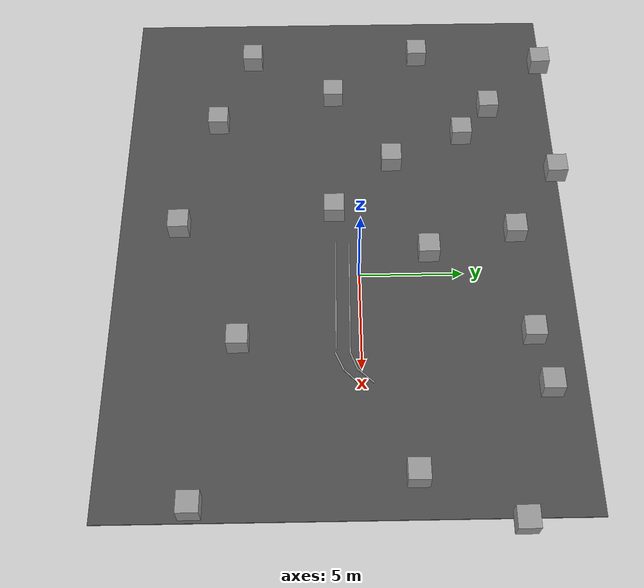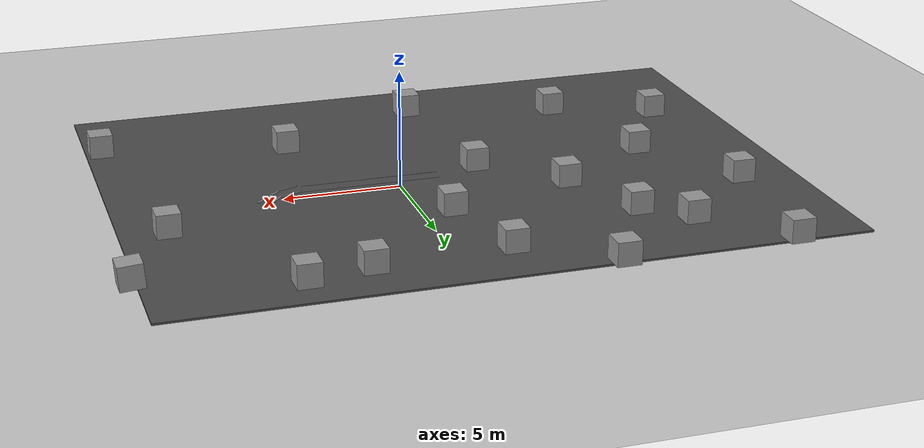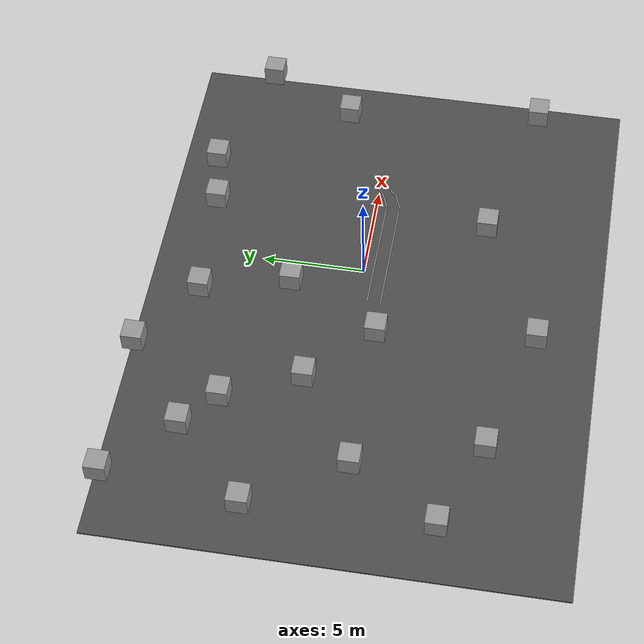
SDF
<sdf version="1.6">
 <world name="default">
  <light name="sun" type="directional">
   <pose>0 0 100 0 -0 0</pose>
   <diffuse>0.8 0.8 0.8 1</diffuse>
   <specular>0.1 0.1 0.1 1</specular>
   <attenuation>
    <range>1000</range>
    <constant>0.9</constant>
    <linear>0.01</linear>
    <quadratic>0.001</quadratic>
   </attenuation>
   <direction>-0.5 0.5 -1</direction>
  </light>
  <model name="ground_plane">
   <static>1</static>
   <link name="link">
    <collision name="collision">
     <geometry><plane><normal>0 0 1</normal><size>100 100</size></plane></geometry>
     <surface><friction><ode><mu>100</mu><mu2>50</mu2></ode></friction></surface>
    </collision>
    <visual name="visual">
     <cast_shadows>0</cast_shadows>
     <geometry><plane><normal>0 0 1</normal><size>100 100</size></plane></geometry>
     <material>
      <script><uri>file://media/materials/scripts/gazebo.material</uri><name>Gazebo/Grey</name></script>
     </material>
    </visual>
   </link>
  </model>
  <gravity>0 0 -9.8</gravity>
  <magnetic_field>6e-06 2.3e-05 -4.2e-05</magnetic_field>
  <atmosphere type="adiabatic"/>
  <physics name="default_physics" default="0" type="ode">
   <max_step_size>0.001</max_step_size>
   <real_time_factor>1</real_time_factor>
   <real_time_update_rate>1000</real_time_update_rate>
  </physics>
  <scene><ambient>0.4 0.4 0.4 1</ambient><background>0.7 0.7 0.7 1</background><shadows>1</shadows></scene>
  <spherical_coordinates>
   <surface_model>EARTH_WGS84</surface_model>
   <latitude_deg>0</latitude_deg>
   <longitude_deg>0</longitude_deg>
   <elevation>0</elevation>
   <heading_deg>0</heading_deg>
  </spherical_coordinates>
  <model name="asphalt_plane">
   <static>1</static>
   <link name="link">
    <collision name="collision"><geometry><box><size>28.54 22.04 0.1</size></box></geometry></collision>
    <visual name="visual">
     <cast_shadows>0</cast_shadows>
     <geometry><box><size>28.54 22.04 0.1</size></box></geometry>
     <material>
      <script>
       <uri>model://asphalt_plane/materials/scripts</uri>
       <uri>model://asphalt_plane/materials/textures</uri>
       <name>vrc/asphalt</name>
      </script>
     </material>
    </visual>
   </link>
   <pose>-2.18294 -0.768054 0 0 -0 0</pose>
  </model>
  <audio><device>default</device></audio>
  <model name="unit_box">
   <pose>-9.27269 -7.142 0.55 0 -0 2.8e-05</pose>
   <link name="link">
    <inertial>
     <mass>1</mass>
     <inertia>
      <ixx>0.166667</ixx>
      <ixy>0</ixy>
      <ixz>0</ixz>
      <iyy>0.166667</iyy>
      <iyz>0</iyz>
      <izz>0.166667</izz>
     </inertia>
    </inertial>
    <collision name="collision"><geometry><box><size>1 1 1</size></box></geometry></collision>
    <visual name="visual">
     <geometry><box><size>1 1 1</size></box></geometry>
     <material>
      <script><name>Gazebo/Grey</name><uri>file://media/materials/scripts/gazebo.material</uri></script>
     </material>
    </visual>
   </link>
  </model>
  <model name="unit_box_clone">
   <pose>-2.81391 -8.82208 0.55 0 -0 4e-05</pose>
   <link name="link">
    <inertial>
     <mass>1</mass>
     <inertia>
      <ixx>0.166667</ixx>
      <ixy>0</ixy>
      <ixz>0</ixz>
      <iyy>0.166667</iyy>
      <iyz>0</iyz>
      <izz>0.166667</izz>
     </inertia>
    </inertial>
    <collision name="collision"><geometry><box><size>1 1 1</size></box></geometry></collision>
    <visual name="visual">
     <geometry><box><size>1 1 1</size></box></geometry>
     <material>
      <script><name>Gazebo/Grey</name><uri>file://media/materials/scripts/gazebo.material</uri></script>
     </material>
    </visual>
   </link>
  </model>
  <model name="unit_box_clone_0">
   <pose>3.59663 -5.7101 0.55 0 -0 3.9e-05</pose>
   <link name="link">
    <inertial>
     <mass>1</mass>
     <inertia>
      <ixx>0.166667</ixx>
      <ixy>0</ixy>
      <ixz>0</ixz>
      <iyy>0.166667</iyy>
      <iyz>0</iyz>
      <izz>0.166667</izz>
     </inertia>
    </inertial>
    <collision name="collision"><geometry><box><size>1 1 1</size></box></geometry></collision>
    <visual name="visual">
     <geometry><box><size>1 1 1</size></box></geometry>
     <material>
      <script><name>Gazebo/Grey</name><uri>file://media/materials/scripts/gazebo.material</uri></script>
     </material>
    </visual>
   </link>
  </model>
  <model name="unit_box_clone_1">
   <pose>11.4527 -7.49623 0.55 0 -0 1.8e-05</pose>
   <link name="link">
    <inertial>
     <mass>1</mass>
     <inertia>
      <ixx>0.166667</ixx>
      <ixy>0</ixy>
      <ixz>0</ixz>
      <iyy>0.166667</iyy>
      <iyz>0</iyz>
      <izz>0.166667</izz>
     </inertia>
    </inertial>
    <collision name="collision"><geometry><box><size>1 1 1</size></box></geometry></collision>
    <visual name="visual">
     <geometry><box><size>1 1 1</size></box></geometry>
     <material>
      <script><name>Gazebo/Grey</name><uri>file://media/materials/scripts/gazebo.material</uri></script>
     </material>
    </visual>
   </link>
  </model>
  <model name="unit_box_clone_2">
   <pose>10.1713 2.31269 0.55 0 -0 1.7e-05</pose>
   <link name="link">
    <inertial>
     <mass>1</mass>
     <inertia>
      <ixx>0.166667</ixx>
      <ixy>0</ixy>
      <ixz>0</ixz>
      <iyy>0.166667</iyy>
      <iyz>0</iyz>
      <izz>0.166667</izz>
     </inertia>
    </inertial>
    <collision name="collision"><geometry><box><size>1 1 1</size></box></geometry></collision>
    <visual name="visual">
     <geometry><box><size>1 1 1</size></box></geometry>
     <material>
      <script><name>Gazebo/Grey</name><uri>file://media/materials/scripts/gazebo.material</uri></script>
     </material>
    </visual>
   </link>
  </model>
  <model name="unit_box_clone_3">
   <pose>12.2955 6.7436 0.535827 6e-06 0.0745 0</pose>
   <link name="link">
    <inertial>
     <mass>1</mass>
     <inertia>
      <ixx>0.166667</ixx>
      <ixy>0</ixy>
      <ixz>0</ixz>
      <iyy>0.166667</iyy>
      <iyz>0</iyz>
      <izz>0.166667</izz>
     </inertia>
    </inertial>
    <collision name="collision"><geometry><box><size>1 1 1</size></box></geometry></collision>
    <visual name="visual">
     <geometry><box><size>1 1 1</size></box></geometry>
     <material>
      <script><name>Gazebo/Grey</name><uri>file://media/materials/scripts/gazebo.material</uri></script>
     </material>
    </visual>
   </link>
  </model>
  <model name="unit_box_clone_4">
   <pose>6.04494 8.55611 0.55 0 -0 3.7e-05</pose>
   <link name="link">
    <inertial>
     <mass>1</mass>
     <inertia>
      <ixx>0.166667</ixx>
      <ixy>0</ixy>
      <ixz>0</ixz>
      <iyy>0.166667</iyy>
      <iyz>0</iyz>
      <izz>0.166667</izz>
     </inertia>
    </inertial>
    <collision name="collision"><geometry><box><size>1 1 1</size></box></geometry></collision>
    <visual name="visual">
     <geometry><box><size>1 1 1</size></box></geometry>
     <material>
      <script><name>Gazebo/Grey</name><uri>file://media/materials/scripts/gazebo.material</uri></script>
     </material>
    </visual>
   </link>
  </model>
  <model name="unit_box_clone_5">
   <pose>4.62523 -1.01785 0.081092 0.011837 -0.029592 0.404136</pose>
   <link name="link">
    <inertial>
     <mass>1</mass>
     <inertia>
      <ixx>0.166667</ixx>
      <ixy>0</ixy>
      <ixz>0</ixz>
      <iyy>0.166667</iyy>
      <iyz>0</iyz>
      <izz>0.166667</izz>
     </inertia>
    </inertial>
    <collision name="collision"><geometry><box><size>1 0.075071 0.0317234</size></box></geometry></collision>
    <visual name="visual">
     <geometry><box><size>1 0.075071 0.0317234</size></box></geometry>
     <material>
      <script><name>Gazebo/Grey</name><uri>file://media/materials/scripts/gazebo.material</uri></script>
     </material>
    </visual>
   </link>
  </model>
  <model name="unit_box_clone_6">
   <pose>-3.63645 -1.17096 0.55 0 -0 3.6e-05</pose>
   <link name="link">
    <inertial>
     <mass>1</mass>
     <inertia>
      <ixx>0.166667</ixx>
      <ixy>0</ixy>
      <ixz>0</ixz>
      <iyy>0.166667</iyy>
      <iyz>0</iyz>
      <izz>0.166667</izz>
     </inertia>
    </inertial>
    <collision name="collision"><geometry><box><size>1 1 1</size></box></geometry></collision>
    <visual name="visual">
     <geometry><box><size>1 1 1</size></box></geometry>
     <material>
      <script><name>Gazebo/Grey</name><uri>file://media/materials/scripts/gazebo.material</uri></script>
     </material>
    </visual>
   </link>
  </model>
  <model name="unit_box_clone_7">
   <pose>-6.71228 1.78805 0.55 0 -0 3.5e-05</pose>
   <link name="link">
    <inertial>
     <mass>1</mass>
     <inertia>
      <ixx>0.166667</ixx>
      <ixy>0</ixy>
      <ixz>0</ixz>
      <iyy>0.166667</iyy>
      <iyz>0</iyz>
      <izz>0.166667</izz>
     </inertia>
    </inertial>
    <collision name="collision"><geometry><box><size>1 1 1</size></box></geometry></collision>
    <visual name="visual">
     <geometry><box><size>1 1 1</size></box></geometry>
     <material>
      <script><name>Gazebo/Grey</name><uri>file://media/materials/scripts/gazebo.material</uri></script>
     </material>
    </visual>
   </link>
  </model>
  <model name="unit_box_clone_8">
   <pose>-8.37753 5.49633 0.55 0 -0 3.4e-05</pose>
   <link name="link">
    <inertial>
     <mass>1</mass>
     <inertia>
      <ixx>0.166667</ixx>
      <ixy>0</ixy>
      <ixz>0</ixz>
      <iyy>0.166667</iyy>
      <iyz>0</iyz>
      <izz>0.166667</izz>
     </inertia>
    </inertial>
    <collision name="collision"><geometry><box><size>1 1 1</size></box></geometry></collision>
    <visual name="visual">
     <geometry><box><size>1 1 1</size></box></geometry>
     <material>
      <script><name>Gazebo/Grey</name><uri>file://media/materials/scripts/gazebo.material</uri></script>
     </material>
    </visual>
   </link>
  </model>
  <model name="unit_box_clone_9">
   <pose>-1.19867 3.40042 0.55 0 -0 3.4e-05</pose>
   <link name="link">
    <inertial>
     <mass>1</mass>
     <inertia>
      <ixx>0.166667</ixx>
      <ixy>0</ixy>
      <ixz>0</ixz>
      <iyy>0.166667</iyy>
      <iyz>0</iyz>
      <izz>0.166667</izz>
     </inertia>
    </inertial>
    <collision name="collision"><geometry><box><size>1 1 1</size></box></geometry></collision>
    <visual name="visual">
     <geometry><box><size>1 1 1</size></box></geometry>
     <material>
      <script><name>Gazebo/Grey</name><uri>file://media/materials/scripts/gazebo.material</uri></script>
     </material>
    </visual>
   </link>
  </model>
  <model name="unit_box_clone_10">
   <pose>3.37422 8.03638 0.55 0 -0 3.3e-05</pose>
   <link name="link">
    <inertial>
     <mass>1</mass>
     <inertia>
      <ixx>0.166667</ixx>
      <ixy>0</ixy>
      <ixz>0</ixz>
      <iyy>0.166667</iyy>
      <iyz>0</iyz>
      <izz>0.166667</izz>
     </inertia>
    </inertial>
    <collision name="collision"><geometry><box><size>1 1 1</size></box></geometry></collision>
    <visual name="visual">
     <geometry><box><size>1 1 1</size></box></geometry>
     <material>
      <script><name>Gazebo/Grey</name><uri>file://media/materials/scripts/gazebo.material</uri></script>
     </material>
    </visual>
   </link>
  </model>
  <model name="unit_box_clone_11">
   <pose>-2.28612 7.73137 0.55 0 -0 3.2e-05</pose>
   <link name="link">
    <inertial>
     <mass>1</mass>
     <inertia>
      <ixx>0.166667</ixx>
      <ixy>0</ixy>
      <ixz>0</ixz>
      <iyy>0.166667</iyy>
      <iyz>0</iyz>
      <izz>0.166667</izz>
     </inertia>
    </inertial>
    <collision name="collision"><geometry><box><size>1 1 1</size></box></geometry></collision>
    <visual name="visual">
     <geometry><box><size>1 1 1</size></box></geometry>
     <material>
      <script><name>Gazebo/Grey</name><uri>file://media/materials/scripts/gazebo.material</uri></script>
     </material>
    </visual>
   </link>
  </model>
  <model name="unit_box_clone_12">
   <pose>-5.89623 10.1647 0.55 0 -0 6.4e-05</pose>
   <link name="link">
    <inertial>
     <mass>1</mass>
     <inertia>
      <ixx>0.166667</ixx>
      <ixy>0</ixy>
      <ixz>0</ixz>
      <iyy>0.166667</iyy>
      <iyz>0</iyz>
      <izz>0.166667</izz>
     </inertia>
    </inertial>
    <collision name="collision"><geometry><box><size>1 1 1</size></box></geometry></collision>
    <visual name="visual">
     <geometry><box><size>1 1 1</size></box></geometry>
     <material>
      <script><name>Gazebo/Grey</name><uri>file://media/materials/scripts/gazebo.material</uri></script>
     </material>
    </visual>
   </link>
  </model>
  <model name="unit_box_clone_13">
   <pose>-10.1615 7.04331 0.55 0 -0 3.1e-05</pose>
   <link name="link">
    <inertial>
     <mass>1</mass>
     <inertia>
      <ixx>0.166667</ixx>
      <ixy>0</ixy>
      <ixz>0</ixz>
      <iyy>0.166667</iyy>
      <iyz>0</iyz>
      <izz>0.166667</izz>
     </inertia>
    </inertial>
    <collision name="collision"><geometry><box><size>1 1 1</size></box></geometry></collision>
    <visual name="visual">
     <geometry><box><size>1 1 1</size></box></geometry>
     <material>
      <script><name>Gazebo/Grey</name><uri>file://media/materials/scripts/gazebo.material</uri></script>
     </material>
    </visual>
   </link>
  </model>
  <model name="unit_box_clone_14">
   <pose>-13.8632 3.44477 0.55 0 -0 3.1e-05</pose>
   <link name="link">
    <inertial>
     <mass>1</mass>
     <inertia>
      <ixx>0.166667</ixx>
      <ixy>0</ixy>
      <ixz>0</ixz>
      <iyy>0.166667</iyy>
      <iyz>0</iyz>
      <izz>0.166667</izz>
     </inertia>
    </inertial>
    <collision name="collision"><geometry><box><size>1 1 1</size></box></geometry></collision>
    <visual name="visual">
     <geometry><box><size>1 1 1</size></box></geometry>
     <material>
      <script><name>Gazebo/Grey</name><uri>file://media/materials/scripts/gazebo.material</uri></script>
     </material>
    </visual>
   </link>
  </model>
  <model name="unit_box_clone_15">
   <pose>-13.1878 10.0939 0.55 0 -0 2.2e-05</pose>
   <link name="link">
    <inertial>
     <mass>1</mass>
     <inertia>
      <ixx>0.166667</ixx>
      <ixy>0</ixy>
      <ixz>0</ixz>
      <iyy>0.166667</iyy>
      <iyz>0</iyz>
      <izz>0.166667</izz>
     </inertia>
    </inertial>
    <collision name="collision"><geometry><box><size>1 1 1</size></box></geometry></collision>
    <visual name="visual">
     <geometry><box><size>1 1 1</size></box></geometry>
     <material>
      <script><name>Gazebo/Grey</name><uri>file://media/materials/scripts/gazebo.material</uri></script>
     </material>
    </visual>
   </link>
  </model>
  <model name="unit_box_clone_16">
   <pose>-11.057 -1.13421 0.55 0 -0 2.9e-05</pose>
   <link name="link">
    <inertial>
     <mass>1</mass>
     <inertia>
      <ixx>0.166667</ixx>
      <ixy>0</ixy>
      <ixz>0</ixz>
      <iyy>0.166667</iyy>
      <iyz>0</iyz>
      <izz>0.166667</izz>
     </inertia>
    </inertial>
    <collision name="collision"><geometry><box><size>1 1 1</size></box></geometry></collision>
    <visual name="visual">
     <geometry><box><size>1 1 1</size></box></geometry>
     <material>
      <script><name>Gazebo/Grey</name><uri>file://media/materials/scripts/gazebo.material</uri></script>
     </material>
    </visual>
   </link>
  </model>
  <model name="unit_box_clone_17">
   <pose>-13.6269 -5.46541 0.55 0 -0 1e-06</pose>
   <link name="link">
    <inertial>
     <mass>1</mass>
     <inertia>
      <ixx>0.166667</ixx>
      <ixy>0</ixy>
      <ixz>0</ixz>
      <iyy>0.166667</iyy>
      <iyz>0</iyz>
      <izz>0.166667</izz>
     </inertia>
    </inertial>
    <collision name="collision"><geometry><box><size>1 1 1</size></box></geometry></collision>
    <visual name="visual">
     <geometry><box><size>1 1 1</size></box></geometry>
     <material>
      <script><name>Gazebo/Grey</name><uri>file://media/materials/scripts/gazebo.material</uri></script>
     </material>
    </visual>
   </link>
  </model>
  <model name="unit_box_0">
   <pose>1.13 -1.14211 0.051373 0.001006 0.001248 -0.007686</pose>
   <link name="link">
    <inertial>
     <mass>1</mass>
     <inertia>
      <ixx>0.166667</ixx>
      <ixy>0</ixy>
      <ixz>0</ixz>
      <iyy>0.166667</iyy>
      <iyz>0</iyz>
      <izz>0.166667</izz>
     </inertia>
    </inertial>
    <collision name="collision">
     <geometry><box><size>6.04838 0.0573255 0.00443513</size></box></geometry>
    </collision>
    <visual name="visual">
     <geometry><box><size>6.04838 0.0573255 0.00443513</size></box></geometry>
     <material>
      <script><name>Gazebo/Grey</name><uri>file://media/materials/scripts/gazebo.material</uri></script>
     </material>
    </visual>
   </link>
  </model>
  <model name="unit_box_0_clone">
   <pose>1.1868 -0.485336 0.051928 7.5e-05 0.001406 -0.009436</pose>
   <link name="link">
    <inertial>
     <mass>1</mass>
     <inertia>
      <ixx>0.166667</ixx>
      <ixy>0</ixy>
      <ixz>0</ixz>
      <iyy>0.166667</iyy>
      <iyz>0</iyz>
      <izz>0.166667</izz>
     </inertia>
    </inertial>
    <collision name="collision"><geometry><box><size>6.04839 0.057326 0.004435</size></box></geometry></collision>
    <visual name="visual">
     <geometry><box><size>6.04839 0.057326 0.004435</size></box></geometry>
     <material>
      <script><name>Gazebo/Grey</name><uri>file://media/materials/scripts/gazebo.material</uri></script>
     </material>
    </visual>
   </link>
  </model>
  <model name="unit_box_clone_5_clone">
   <pose>4.63 -0.343883 0.065864 -7.7e-05 0 0.370356</pose>
   <link name="link">
    <inertial>
     <mass>1</mass>
     <inertia>
      <ixx>0.166667</ixx>
      <ixy>0</ixy>
      <ixz>0</ixz>
      <iyy>0.166667</iyy>
      <iyz>0</iyz>
      <izz>0.166667</izz>
     </inertia>
    </inertial>
    <collision name="collision"><geometry><box><size>1 0.075071 0.031723</size></box></geometry></collision>
    <visual name="visual">
     <geometry><box><size>1 0.075071 0.031723</size></box></geometry>
     <material>
      <script><name>Gazebo/Grey</name><uri>file://media/materials/scripts/gazebo.material</uri></script>
     </material>
    </visual>
   </link>
  </model>
  <model name="unit_box_clone_5_clone_clone">
   <pose>5.38138 0.193614 0.082749 3e-06 0.033848 0.83274</pose>
   <link name="link">
    <inertial>
     <mass>1</mass>
     <inertia>
      <ixx>0.166667</ixx>
      <ixy>0</ixy>
      <ixz>0</ixz>
      <iyy>0.166667</iyy>
      <iyz>0</iyz>
      <izz>0.166667</izz>
     </inertia>
    </inertial>
    <collision name="collision"><geometry><box><size>1 0.075071 0.031723</size></box></geometry></collision>
    <visual name="visual">
     <geometry><box><size>1 0.075071 0.031723</size></box></geometry>
     <material>
      <script><name>Gazebo/Grey</name><uri>file://media/materials/scripts/gazebo.material</uri></script>
     </material>
    </visual>
   </link>
  </model>
  <model name="unit_box_clone_5_clone_clone_0">
   <pose>5.56625 -0.315965 0.065008 0.000116 -0.002273 0.767327</pose>
   <link name="link">
    <inertial>
     <mass>1</mass>
     <inertia>
      <ixx>0.166667</ixx>
      <ixy>0</ixy>
      <ixz>0</ixz>
      <iyy>0.166667</iyy>
      <iyz>0</iyz>
      <izz>0.166667</izz>
     </inertia>
    </inertial>
    <collision name="collision"><geometry><box><size>1.44785 0.075071 0.031723</size></box></geometry></collision>
    <visual name="visual">
     <geometry><box><size>1.44785 0.075071 0.031723</size></box></geometry>
     <material>
      <script><name>Gazebo/Grey</name><uri>file://media/materials/scripts/gazebo.material</uri></script>
     </material>
    </visual>
   </link>
  </model>
 </world>
</sdf>
